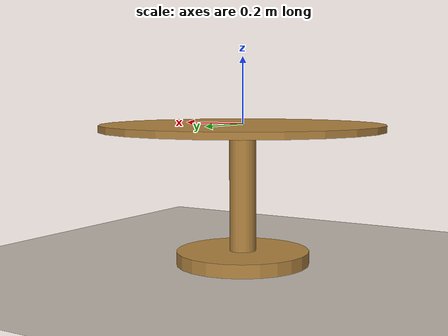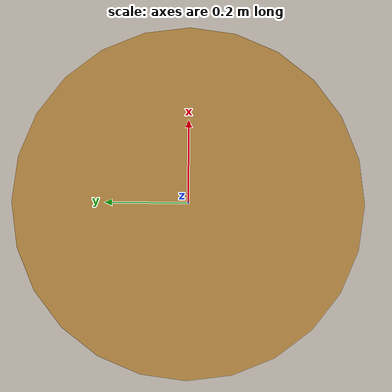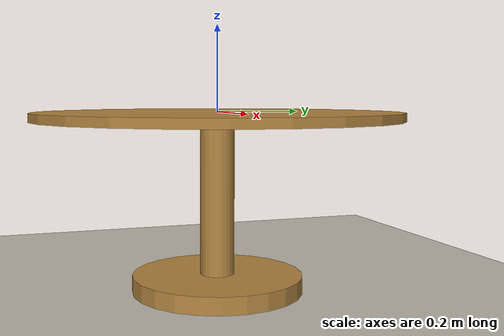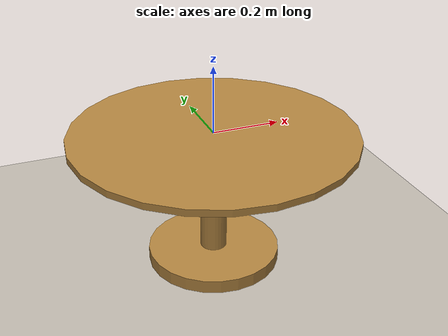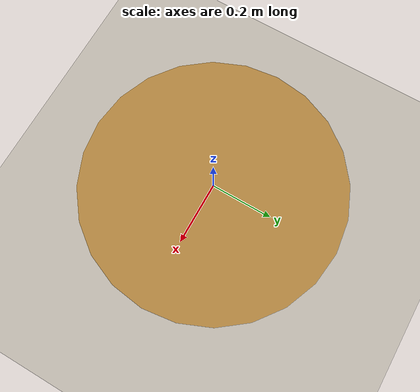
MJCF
<mujoco model="xarm_scene">

  <compiler angle="radian" meshdir="assets" texturedir="assets" autolimits="true"/>

  <statistic center="0.3 0 0.4" extent="0.8"/>

  <visual>
    <headlight diffuse="0.6 0.6 0.6"  ambient="0.1 0.1 0.1" specular="0 0 0"/>
    <rgba haze="0.15 0.25 0.35 1"/>
    <global azimuth="120" elevation="-20"/>
  </visual>

  <default>
    <default class="visual_scene">
      <geom contype="0" conaffinity="0"/>
    </default>
  </default>

  <asset>
    <texture type="2d" name="floor" file="carpet.png" width="256" height="256"/>
    <texture type="skybox" builtin="gradient" rgb1="0.3 0.5 0.7" rgb2="0 0 0" width="512"
        height="3072"/>
    <material name="table" rgba="0.7 0.52 0.25 1"/>
    <material name="floor" texture="floor"/>
    <material name="seat_mat" rgba="0.533 0.529 0.514 1" specular="0.5" shininess="0.25"/>
  </asset>

  <worldbody>
    <light pos="0.6 -0.1 1.5" dir="0 0.3 -1" directional="true" castshadow="false"/>

    <geom name="floor" size="0 0 0.05" pos="0 0 -0.42" type="plane" material="floor"/>

    <!-- The desktop center is (0, 0, 0) -->
    <body name="table" pos="0 0 0">
      <geom name="table_top" type="cylinder" size="0.425 0.01" pos="0 0 -0.01" material="table" class="visual_scene"/>
      <geom name="table_top_col" type="box" size="0.425 0.425 0.05" pos="0 0 -0.05" group="3" material="table"/>
      <geom name="table_mid" type="cylinder" size="0.04 0.18" pos="0 0 -0.2" material="table" class="visual_scene"/>
      <geom name="table_bottom" type="cylinder" size="0.2 0.02" pos="0 0 -0.4" material="table" class="visual_scene"/>
    </body>

  </worldbody>

</mujoco>
